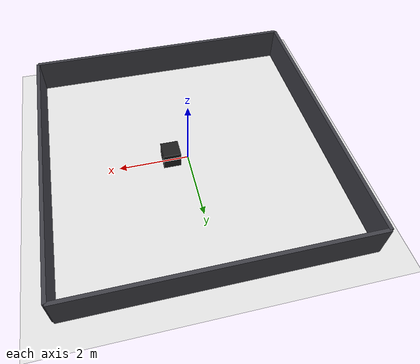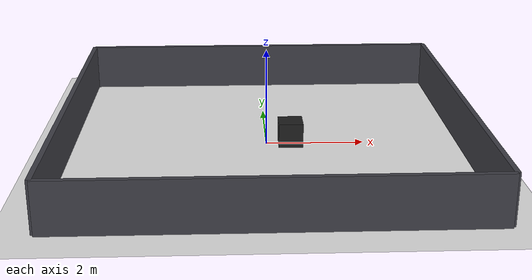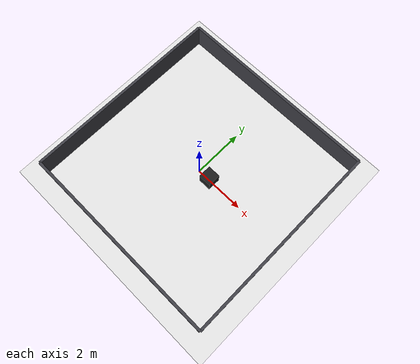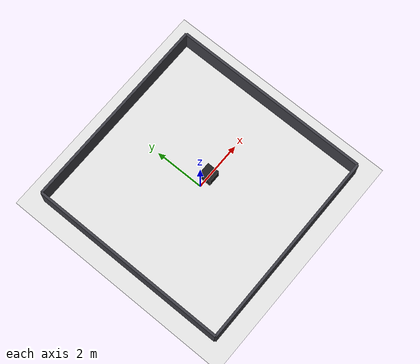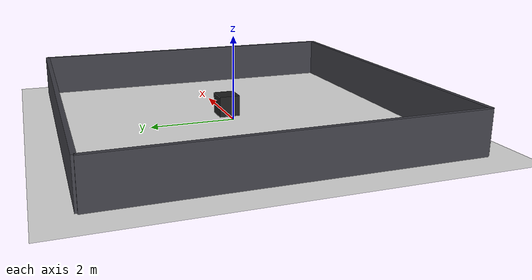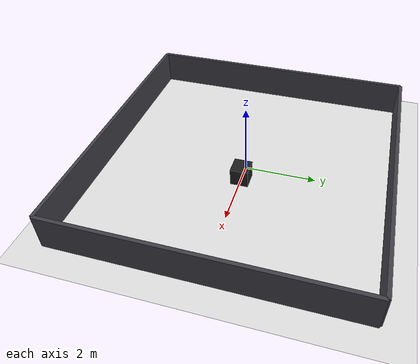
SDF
<?xml version="1.0"?>
<sdf version="1.6">
  <world name="detour_test">

    <!-- ========== Gazebo Sim 系统插件 ========== -->
    <plugin filename="gz-sim-physics-system"
            name="gz::sim::systems::Physics"/>
    <plugin filename="gz-sim-user-commands-system"
            name="gz::sim::systems::UserCommands"/>
    <plugin filename="gz-sim-scene-broadcaster-system"
            name="gz::sim::systems::SceneBroadcaster"/>
    <!-- 相机/激光雷达等渲染传感器必须由 Sensors 系统插件驱动 -->
    <plugin filename="gz-sim-sensors-system"
            name="gz::sim::systems::Sensors">
      <render_engine>ogre2</render_engine>
    </plugin>

    <!-- ========== 物理与光照 ========== -->
    <physics type="ignored">
      <max_step_size>0.001</max_step_size>
      <real_time_factor>1.0</real_time_factor>
    </physics>

    <light name="sun" type="directional">
      <cast_shadows>true</cast_shadows>
      <pose>0 0 10 0 0 0</pose>
      <diffuse>0.8 0.8 0.8 1</diffuse>
      <specular>0.2 0.2 0.2 1</specular>
      <direction>-0.5 0.1 -0.9</direction>
    </light>

    <!-- ========== 地面（浅色，高对比度） ========== -->
    <model name="ground_plane">
      <static>true</static>
      <link name="link">
        <collision name="collision">
          <geometry>
            <plane>
              <normal>0 0 1</normal>
              <size>20 20</size>
            </plane>
          </geometry>
        </collision>
        <visual name="visual">
          <geometry>
            <plane>
              <normal>0 0 1</normal>
              <size>20 20</size>
            </plane>
          </geometry>
          <material>
            <ambient>0.9 0.9 0.9 1</ambient>
            <diffuse>0.9 0.9 0.9 1</diffuse>
            <emissive>0.9 0.9 0.9 1</emissive>
          </material>
        </visual>
      </link>
    </model>

    <!-- ========== 四面围墙（深色） ========== -->
    <model name="wall_north">
      <static>true</static>
      <pose>0 4 0.5 0 0 0</pose>
      <link name="link">
        <collision name="c"><geometry><box><size>8 0.1 1.0</size></box></geometry></collision>
        <visual name="v">
          <geometry><box><size>8 0.1 1.0</size></box></geometry>
          <material><ambient>0.25 0.25 0.28 1</ambient><diffuse>0.25 0.25 0.28 1</diffuse></material>
        </visual>
      </link>
    </model>

    <model name="wall_south">
      <static>true</static>
      <pose>0 -4 0.5 0 0 0</pose>
      <link name="link">
        <collision name="c"><geometry><box><size>8 0.1 1.0</size></box></geometry></collision>
        <visual name="v">
          <geometry><box><size>8 0.1 1.0</size></box></geometry>
          <material><ambient>0.25 0.25 0.28 1</ambient><diffuse>0.25 0.25 0.28 1</diffuse></material>
        </visual>
      </link>
    </model>

    <model name="wall_west">
      <static>true</static>
      <pose>-4 0 0.5 0 0 0</pose>
      <link name="link">
        <collision name="c"><geometry><box><size>0.1 8 1.0</size></box></geometry></collision>
        <visual name="v">
          <geometry><box><size>0.1 8 1.0</size></box></geometry>
          <material><ambient>0.25 0.25 0.28 1</ambient><diffuse>0.25 0.25 0.28 1</diffuse></material>
        </visual>
      </link>
    </model>

    <model name="wall_east">
      <static>true</static>
      <pose>4 0 0.5 0 0 0</pose>
      <link name="link">
        <collision name="c"><geometry><box><size>0.1 8 1.0</size></box></geometry></collision>
        <visual name="v">
          <geometry><box><size>0.1 8 1.0</size></box></geometry>
          <material><ambient>0.25 0.25 0.28 1</ambient><diffuse>0.25 0.25 0.28 1</diffuse></material>
        </visual>
      </link>
    </model>

    <!-- ========== 绕行验证用障碍物 ========== -->
    <!-- 放在机器人直行路径正中间（y=0），北/南两侧空间对称（各约 3.65m） -->
    <!-- 北边缘 y=0.25，南边缘 y=-0.25，机器人可任选一侧绕行 -->
    <model name="detour_box">
      <static>true</static>
      <pose>0.5 0 0.25 0 0 0</pose>
      <link name="link">
        <collision name="c"><geometry><box><size>0.5 0.5 0.5</size></box></geometry></collision>
        <visual name="v">
          <geometry><box><size>0.5 0.5 0.5</size></box></geometry>
          <material><ambient>0.12 0.12 0.12 1</ambient><diffuse>0.12 0.12 0.12 1</diffuse></material>
        </visual>
      </link>
    </model>

  </world>
</sdf>
